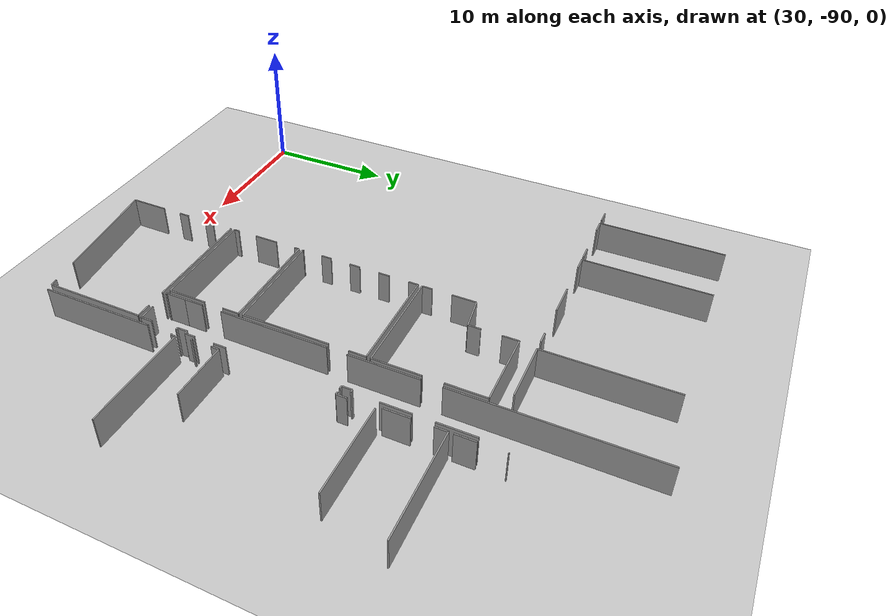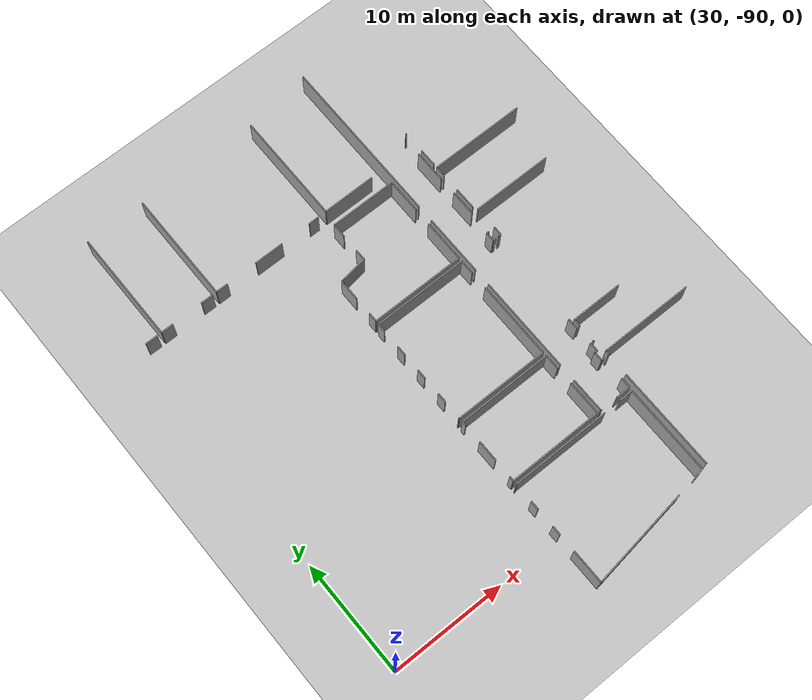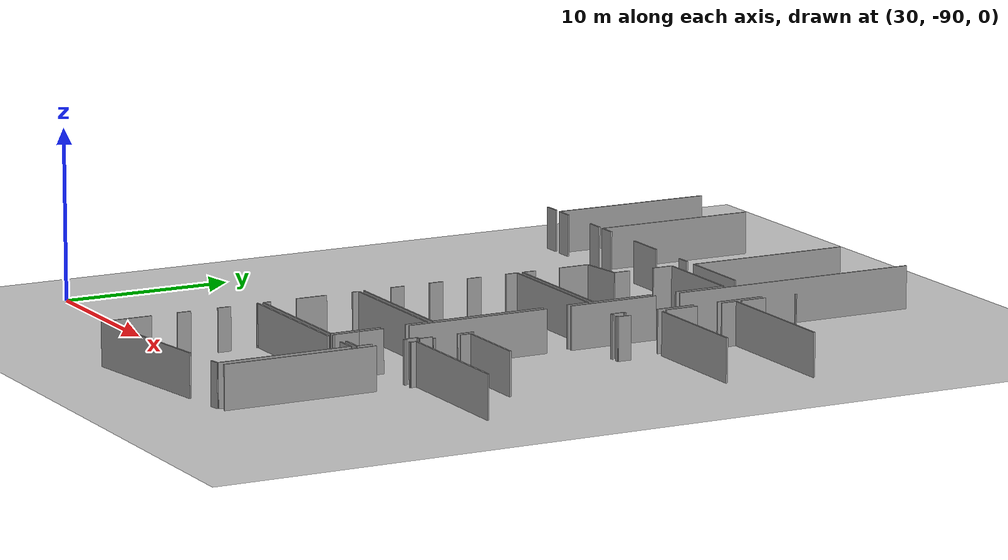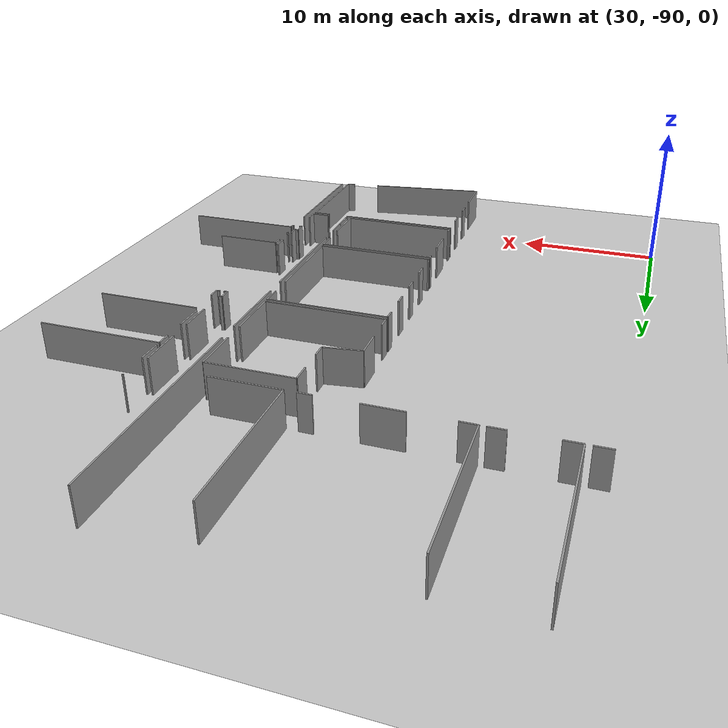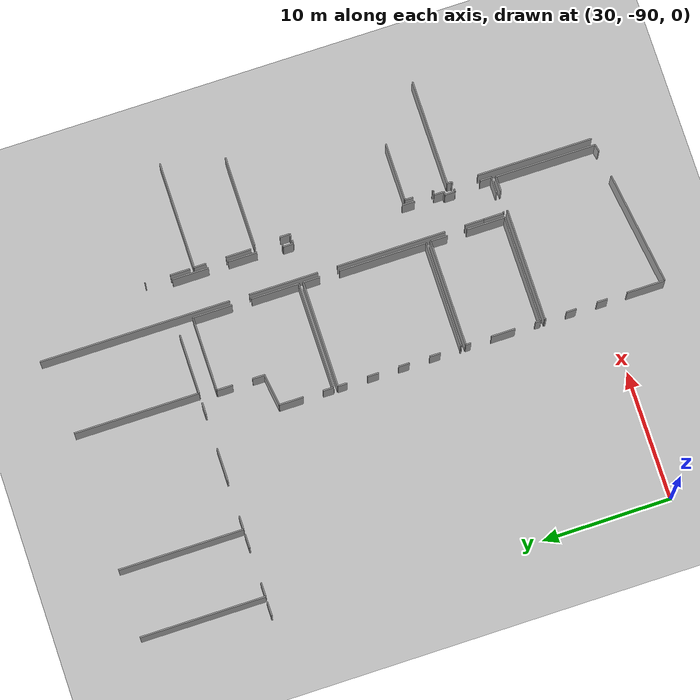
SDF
<sdf version="1.6">
 <world name="default">
  <model name="ground_plane">
   <static>1</static>
   <link name="link">
    <collision name="collision">
     <geometry><plane><normal>0 0 1</normal><size>100 100</size></plane></geometry>
     <surface><friction><ode><mu>100</mu><mu2>50</mu2></ode></friction></surface>
    </collision>
    <visual name="visual">
     <cast_shadows>0</cast_shadows>
     <geometry><plane><normal>0 0 1</normal><size>100 100</size></plane></geometry>
     <material>
      <script><uri>file://media/materials/scripts/gazebo.material</uri><name>Gazebo/Grey</name></script>
     </material>
    </visual>
   </link>
  </model>
  <model name="0510045926_A-40">
   <static>1</static>
   <link name="Wall_1894">
    <collision name="Wall_1894_Collision">
     <geometry><box><size>1.06940469467 0.1 2.5</size></box></geometry>
     <pose>0.534702347334 0 1.25 0 0 0</pose>
    </collision>
    <visual name="Wall_1894_Visual">
     <pose>0.534702347334 0 1.25 0 0 0</pose>
     <geometry><box><size>1.06940469467 0.1 2.5</size></box></geometry>
     <material>
      <script><uri>file://media/materials/scripts/gazebo.material</uri><name>Gazebo/Grey</name></script>
      <ambient>1 1 1 1</ambient>
     </material>
    </visual>
    <pose>165.649619566 -160.406185946 0 0 0 3.14159265359</pose>
   </link>
   <link name="Wall_1896">
    <collision name="Wall_1896_Collision">
     <geometry><box><size>9.62362691407 0.1 2.5</size></box></geometry>
     <pose>4.81181345704 0 1.25 0 0 0</pose>
    </collision>
    <visual name="Wall_1896_Visual">
     <pose>4.81181345704 0 1.25 0 0 0</pose>
     <geometry><box><size>9.62362691407 0.1 2.5</size></box></geometry>
     <material>
      <script><uri>file://media/materials/scripts/gazebo.material</uri><name>Gazebo/Grey</name></script>
      <ambient>1 1 1 1</ambient>
     </material>
    </visual>
    <pose>166.049155048 -160.41430865 0 0 0 1.57079632679</pose>
   </link>
   <link name="Wall_1900">
    <collision name="Wall_1900_Collision">
     <geometry><box><size>1.0668663498 0.1 2.5</size></box></geometry>
     <pose>0.533433174898 0 1.25 0 0 0</pose>
    </collision>
    <visual name="Wall_1900_Visual">
     <pose>0.533433174898 0 1.25 0 0 0</pose>
     <geometry><box><size>1.0668663498 0.1 2.5</size></box></geometry>
     <material>
      <script><uri>file://media/materials/scripts/gazebo.material</uri><name>Gazebo/Grey</name></script>
      <ambient>1 1 1 1</ambient>
     </material>
    </visual>
    <pose>170.886732706 -160.409993464 0 0 0 3.14159265359</pose>
   </link>
   <link name="Wall_1901">
    <collision name="Wall_1901_Collision">
     <geometry><box><size>1.07245938992 0.1 2.5</size></box></geometry>
     <pose>0.53622969496 0 1.25 0 0 0</pose>
    </collision>
    <visual name="Wall_1901_Visual">
     <pose>0.53622969496 0 1.25 0 0 0</pose>
     <geometry><box><size>1.07245938992 0.1 2.5</size></box></geometry>
     <material>
      <script><uri>file://media/materials/scripts/gazebo.material</uri><name>Gazebo/Grey</name></script>
      <ambient>1 1 1 1</ambient>
     </material>
    </visual>
    <pose>167.121605757 -160.409993464 0 0 0 -3.13756900666</pose>
   </link>
   <link name="Wall_1902">
    <collision name="Wall_1902_Collision">
     <geometry><box><size>9.60865067932 0.1 2.5</size></box></geometry>
     <pose>4.80432533966 0 1.25 0 0 0</pose>
    </collision>
    <visual name="Wall_1902_Visual">
     <pose>4.80432533966 0 1.25 0 0 0</pose>
     <geometry><box><size>9.60865067932 0.1 2.5</size></box></geometry>
     <material>
      <script><uri>file://media/materials/scripts/gazebo.material</uri><name>Gazebo/Grey</name></script>
      <ambient>1 1 1 1</ambient>
     </material>
    </visual>
    <pose>171.266215264 -160.406693615 0 0 0 1.57079632679</pose>
   </link>
   <link name="Wall_1907">
    <collision name="Wall_1907_Collision">
     <geometry><box><size>0.892735891562 0.1 2.5</size></box></geometry>
     <pose>0.446367945781 0 1.25 0 0 0</pose>
    </collision>
    <visual name="Wall_1907_Visual">
     <pose>0.446367945781 0 1.25 0 0 0</pose>
     <geometry><box><size>0.892735891562 0.1 2.5</size></box></geometry>
     <material>
      <script><uri>file://media/materials/scripts/gazebo.material</uri><name>Gazebo/Grey</name></script>
      <ambient>1 1 1 1</ambient>
     </material>
    </visual>
    <pose>181.166521769 -160.416339326 0 0 0 3.14159265359</pose>
   </link>
   <link name="Wall_1908">
    <collision name="Wall_1908_Collision">
     <geometry><box><size>2.55433644492 0.1 2.5</size></box></geometry>
     <pose>1.27716822246 0 1.25 0 0 0</pose>
    </collision>
    <visual name="Wall_1908_Visual">
     <pose>1.27716822246 0 1.25 0 0 0</pose>
     <geometry><box><size>2.55433644492 0.1 2.5</size></box></geometry>
     <material>
      <script><uri>file://media/materials/scripts/gazebo.material</uri><name>Gazebo/Grey</name></script>
      <ambient>1 1 1 1</ambient>
     </material>
    </visual>
    <pose>177.611315941 -160.416339326 0 0 0 3.14159265359</pose>
   </link>
   <link name="Wall_1909">
    <collision name="Wall_1909_Collision">
     <geometry><box><size>1.05624934476 0.1 2.5</size></box></geometry>
     <pose>0.528124672378 0 1.25 0 0 0</pose>
    </collision>
    <visual name="Wall_1909_Visual">
     <pose>0.528124672378 0 1.25 0 0 0</pose>
     <geometry><box><size>1.05624934476 0.1 2.5</size></box></geometry>
     <material>
      <script><uri>file://media/materials/scripts/gazebo.material</uri><name>Gazebo/Grey</name></script>
      <ambient>1 1 1 1</ambient>
     </material>
    </visual>
    <pose>172.322420566 -160.416339326 0 0 0 3.13246048737</pose>
   </link>
   <link name="Wall_1982">
    <collision name="Wall_1982_Collision">
     <geometry><box><size>9.62591142446 0.1 2.5</size></box></geometry>
     <pose>4.81295571223 0 1.25 0 0 0</pose>
    </collision>
    <visual name="Wall_1982_Visual">
     <pose>4.81295571223 0 1.25 0 0 0</pose>
     <geometry><box><size>9.62591142446 0.1 2.5</size></box></geometry>
     <material>
      <script><uri>file://media/materials/scripts/gazebo.material</uri><name>Gazebo/Grey</name></script>
      <ambient>1 1 1 1</ambient>
     </material>
    </visual>
    <pose>181.933863424 -160.414054816 0 0 0 1.57079632679</pose>
   </link>
   <link name="Wall_1986">
    <collision name="Wall_1986_Collision">
     <geometry><box><size>4.59973727136 0.1 2.5</size></box></geometry>
     <pose>2.29986863568 0 1.25 0 0 0</pose>
    </collision>
    <visual name="Wall_1986_Visual">
     <pose>2.29986863568 0 1.25 0 0 0</pose>
     <geometry><box><size>4.59973727136 0.1 2.5</size></box></geometry>
     <material>
      <script><uri>file://media/materials/scripts/gazebo.material</uri><name>Gazebo/Grey</name></script>
      <ambient>1 1 1 1</ambient>
     </material>
    </visual>
    <pose>186.533598167 -160.40923196 0 0 0 -3.14054414672</pose>
   </link>
   <link name="Wall_1987">
    <collision name="Wall_1987_Collision">
     <geometry><box><size>0.0758965116795 0.1 2.5</size></box></geometry>
     <pose>0.0379482558398 0 1.25 0 0 0</pose>
    </collision>
    <visual name="Wall_1987_Visual">
     <pose>0.0379482558398 0 1.25 0 0 0</pose>
     <geometry><box><size>0.0758965116795 0.1 2.5</size></box></geometry>
     <material>
      <script><uri>file://media/materials/scripts/gazebo.material</uri><name>Gazebo/Grey</name></script>
      <ambient>1 1 1 1</ambient>
     </material>
    </visual>
    <pose>179.246263874 -179.863360896 0 0 0 1.57079632679</pose>
   </link>
   <link name="Wall_1988">
    <collision name="Wall_1988_Collision">
     <geometry><box><size>0.830038773218 0.1 2.5</size></box></geometry>
     <pose>0.415019386609 0 1.25 0 0 0</pose>
    </collision>
    <visual name="Wall_1988_Visual">
     <pose>0.415019386609 0 1.25 0 0 0</pose>
     <geometry><box><size>0.830038773218 0.1 2.5</size></box></geometry>
     <material>
      <script><uri>file://media/materials/scripts/gazebo.material</uri><name>Gazebo/Grey</name></script>
      <ambient>1 1 1 1</ambient>
     </material>
    </visual>
    <pose>179.246263874 -178.231205143 0 0 0 1.57079632679</pose>
   </link>
   <link name="Wall_1989">
    <collision name="Wall_1989_Collision">
     <geometry><box><size>0.830292607705 0.1 2.5</size></box></geometry>
     <pose>0.415146303853 0 1.25 0 0 0</pose>
    </collision>
    <visual name="Wall_1989_Visual">
     <pose>0.415146303853 0 1.25 0 0 0</pose>
     <geometry><box><size>0.830292607705 0.1 2.5</size></box></geometry>
     <material>
      <script><uri>file://media/materials/scripts/gazebo.material</uri><name>Gazebo/Grey</name></script>
      <ambient>1 1 1 1</ambient>
     </material>
    </visual>
    <pose>179.246263874 -175.821300521 0 0 0 1.57079632679</pose>
   </link>
   <link name="Wall_1990">
    <collision name="Wall_1990_Collision">
     <geometry><box><size>0.862021918608 0.1 2.5</size></box></geometry>
     <pose>0.431010959304 0 1.25 0 0 0</pose>
    </collision>
    <visual name="Wall_1990_Visual">
     <pose>0.431010959304 0 1.25 0 0 0</pose>
     <geometry><box><size>0.862021918608 0.1 2.5</size></box></geometry>
     <material>
      <script><uri>file://media/materials/scripts/gazebo.material</uri><name>Gazebo/Grey</name></script>
      <ambient>1 1 1 1</ambient>
     </material>
    </visual>
    <pose>179.246263874 -173.44591739 0 0 0 1.57079632679</pose>
   </link>
   <link name="Wall_1991">
    <collision name="Wall_1991_Collision">
     <geometry><box><size>0.725712798969 0.1 2.5</size></box></geometry>
     <pose>0.362856399485 0 1.25 0 0 0</pose>
    </collision>
    <visual name="Wall_1991_Visual">
     <pose>0.362856399485 0 1.25 0 0 0</pose>
     <geometry><box><size>0.725712798969 0.1 2.5</size></box></geometry>
     <material>
      <script><uri>file://media/materials/scripts/gazebo.material</uri><name>Gazebo/Grey</name></script>
      <ambient>1 1 1 1</ambient>
     </material>
    </visual>
    <pose>179.246263874 -171.001745112 0 0 0 1.57079632679</pose>
   </link>
   <link name="Wall_1992">
    <collision name="Wall_1992_Collision">
     <geometry><box><size>8.22728339986 0.1 2.5</size></box></geometry>
     <pose>4.11364169993 0 1.25 0 0 0</pose>
    </collision>
    <visual name="Wall_1992_Visual">
     <pose>4.11364169993 0 1.25 0 0 0</pose>
     <geometry><box><size>8.22728339986 0.1 2.5</size></box></geometry>
     <material>
      <script><uri>file://media/materials/scripts/gazebo.material</uri><name>Gazebo/Grey</name></script>
      <ambient>1 1 1 1</ambient>
     </material>
    </visual>
    <pose>179.246263874 -170.276032313 0 0 0 0.0</pose>
   </link>
   <link name="Wall_1993">
    <collision name="Wall_1993_Collision">
     <geometry><box><size>1.29303287791 0.1 2.5</size></box></geometry>
     <pose>0.646516438956 0 1.25 0 0 0</pose>
    </collision>
    <visual name="Wall_1993_Visual">
     <pose>0.646516438956 0 1.25 0 0 0</pose>
     <geometry><box><size>1.29303287791 0.1 2.5</size></box></geometry>
     <material>
      <script><uri>file://media/materials/scripts/gazebo.material</uri><name>Gazebo/Grey</name></script>
      <ambient>1 1 1 1</ambient>
     </material>
    </visual>
    <pose>187.473547274 -170.276032313 0 0 0 -1.57079632679</pose>
   </link>
   <link name="Wall_1994">
    <collision name="Wall_1994_Collision">
     <geometry><box><size>6.77281178807 0.1 2.5</size></box></geometry>
     <pose>3.38640589404 0 1.25 0 0 0</pose>
    </collision>
    <visual name="Wall_1994_Visual">
     <pose>3.38640589404 0 1.25 0 0 0</pose>
     <geometry><box><size>6.77281178807 0.1 2.5</size></box></geometry>
     <material>
      <script><uri>file://media/materials/scripts/gazebo.material</uri><name>Gazebo/Grey</name></script>
      <ambient>1 1 1 1</ambient>
     </material>
    </visual>
    <pose>187.473547274 -173.088518432 0 0 0 -1.57079632679</pose>
   </link>
   <link name="Wall_1995">
    <collision name="Wall_1995_Collision">
     <geometry><box><size>8.22728365047 0.1 2.5</size></box></geometry>
     <pose>4.11364182523 0 1.25 0 0 0</pose>
    </collision>
    <visual name="Wall_1995_Visual">
     <pose>4.11364182523 0 1.25 0 0 0</pose>
     <geometry><box><size>8.22728365047 0.1 2.5</size></box></geometry>
     <material>
      <script><uri>file://media/materials/scripts/gazebo.material</uri><name>Gazebo/Grey</name></script>
      <ambient>1 1 1 1</ambient>
     </material>
    </visual>
    <pose>187.473547274 -179.86133022 0 0 0 -3.14134583143</pose>
   </link>
   <link name="Wall_1996">
    <collision name="Wall_1996_Collision">
     <geometry><box><size>0.412734876224 0.1 2.5</size></box></geometry>
     <pose>0.206367438112 0 1.25 0 0 0</pose>
    </collision>
    <visual name="Wall_1996_Visual">
     <pose>0.206367438112 0 1.25 0 0 0</pose>
     <geometry><box><size>0.412734876224 0.1 2.5</size></box></geometry>
     <material>
      <script><uri>file://media/materials/scripts/gazebo.material</uri><name>Gazebo/Grey</name></script>
      <ambient>1 1 1 1</ambient>
     </material>
    </visual>
    <pose>179.250832894 -186.031031266 0 0 0 1.57079632679</pose>
   </link>
   <link name="Wall_1997">
    <collision name="Wall_1997_Collision">
     <geometry><box><size>1.84969190839 0.1 2.5</size></box></geometry>
     <pose>0.924845954196 0 1.25 0 0 0</pose>
    </collision>
    <visual name="Wall_1997_Visual">
     <pose>0.924845954196 0 1.25 0 0 0</pose>
     <geometry><box><size>1.84969190839 0.1 2.5</size></box></geometry>
     <material>
      <script><uri>file://media/materials/scripts/gazebo.material</uri><name>Gazebo/Grey</name></script>
      <ambient>1 1 1 1</ambient>
     </material>
    </visual>
    <pose>179.250832894 -184.041476555 0 0 0 1.57079632679</pose>
   </link>
   <link name="Wall_1998">
    <collision name="Wall_1998_Collision">
     <geometry><box><size>0.401566158786 0.1 2.5</size></box></geometry>
     <pose>0.200783079393 0 1.25 0 0 0</pose>
    </collision>
    <visual name="Wall_1998_Visual">
     <pose>0.200783079393 0 1.25 0 0 0</pose>
     <geometry><box><size>0.401566158786 0.1 2.5</size></box></geometry>
     <material>
      <script><uri>file://media/materials/scripts/gazebo.material</uri><name>Gazebo/Grey</name></script>
      <ambient>1 1 1 1</ambient>
     </material>
    </visual>
    <pose>179.250832894 -180.604303764 0 0 0 1.57079632679</pose>
   </link>
   <link name="Wall_1999">
    <collision name="Wall_1999_Collision">
     <geometry><box><size>8.24276730358 0.1 2.5</size></box></geometry>
     <pose>4.12138365179 0 1.25 0 0 0</pose>
    </collision>
    <visual name="Wall_1999_Visual">
     <pose>4.12138365179 0 1.25 0 0 0</pose>
     <geometry><box><size>8.24276730358 0.1 2.5</size></box></geometry>
     <material>
      <script><uri>file://media/materials/scripts/gazebo.material</uri><name>Gazebo/Grey</name></script>
      <ambient>1 1 1 1</ambient>
     </material>
    </visual>
    <pose>179.250832894 -180.202737605 0 0 0 0.0</pose>
   </link>
   <link name="Wall_2000">
    <collision name="Wall_2000_Collision">
     <geometry><box><size>1.32120850599 0.1 2.5</size></box></geometry>
     <pose>0.660604252997 0 1.25 0 0 0</pose>
    </collision>
    <visual name="Wall_2000_Visual">
     <pose>0.660604252997 0 1.25 0 0 0</pose>
     <geometry><box><size>1.32120850599 0.1 2.5</size></box></geometry>
     <material>
      <script><uri>file://media/materials/scripts/gazebo.material</uri><name>Gazebo/Grey</name></script>
      <ambient>1 1 1 1</ambient>
     </material>
    </visual>
    <pose>187.493600198 -180.202737605 0 0 0 -1.57079632679</pose>
   </link>
   <link name="Wall_2001">
    <collision name="Wall_2001_Collision">
     <geometry><box><size>2.97773236961 0.1 2.5</size></box></geometry>
     <pose>1.4888661848 0 1.25 0 0 0</pose>
    </collision>
    <visual name="Wall_2001_Visual">
     <pose>1.4888661848 0 1.25 0 0 0</pose>
     <geometry><box><size>2.97773236961 0.1 2.5</size></box></geometry>
     <material>
      <script><uri>file://media/materials/scripts/gazebo.material</uri><name>Gazebo/Grey</name></script>
      <ambient>1 1 1 1</ambient>
     </material>
    </visual>
    <pose>187.493600198 -183.032484469 0 0 0 -1.57079632679</pose>
   </link>
   <link name="Wall_2002">
    <collision name="Wall_2002_Collision">
     <geometry><box><size>8.24279358357 0.1 2.5</size></box></geometry>
     <pose>4.12139679179 0 1.25 0 0 0</pose>
    </collision>
    <visual name="Wall_2002_Visual">
     <pose>4.12139679179 0 1.25 0 0 0</pose>
     <geometry><box><size>8.24279358357 0.1 2.5</size></box></geometry>
     <material>
      <script><uri>file://media/materials/scripts/gazebo.material</uri><name>Gazebo/Grey</name></script>
      <ambient>1 1 1 1</ambient>
     </material>
    </visual>
    <pose>187.493600198 -186.010216838 0 0 0 -3.1390674842</pose>
   </link>
   <link name="Wall_2003">
    <collision name="Wall_2003_Collision">
     <geometry><box><size>4.47713268563 0.1 2.5</size></box></geometry>
     <pose>2.23856634282 0 1.25 0 0 0</pose>
    </collision>
    <visual name="Wall_2003_Visual">
     <pose>2.23856634282 0 1.25 0 0 0</pose>
     <geometry><box><size>4.47713268563 0.1 2.5</size></box></geometry>
     <material>
      <script><uri>file://media/materials/scripts/gazebo.material</uri><name>Gazebo/Grey</name></script>
      <ambient>1 1 1 1</ambient>
     </material>
    </visual>
    <pose>191.063782261 -179.373460335 0 0 0 0.0</pose>
   </link>
   <link name="Wall_2006">
    <collision name="Wall_2006_Collision">
     <geometry><box><size>0.131486264381 0.1 2.5</size></box></geometry>
     <pose>0.0657431321906 0 1.25 0 0 0</pose>
    </collision>
    <visual name="Wall_2006_Visual">
     <pose>0.0657431321906 0 1.25 0 0 0</pose>
     <geometry><box><size>0.131486264381 0.1 2.5</size></box></geometry>
     <material>
      <script><uri>file://media/materials/scripts/gazebo.material</uri><name>Gazebo/Grey</name></script>
      <ambient>1 1 1 1</ambient>
     </material>
    </visual>
    <pose>191.035860467 -181.645786665 0 0 0 1.57079632679</pose>
   </link>
   <link name="Wall_2007">
    <collision name="Wall_2007_Collision">
     <geometry><box><size>0.637736101569 0.1 2.5</size></box></geometry>
     <pose>0.318868050785 0 1.25 0 0 0</pose>
    </collision>
    <visual name="Wall_2007_Visual">
     <pose>0.318868050785 0 1.25 0 0 0</pose>
     <geometry><box><size>0.637736101569 0.1 2.5</size></box></geometry>
     <material>
      <script><uri>file://media/materials/scripts/gazebo.material</uri><name>Gazebo/Grey</name></script>
      <ambient>1 1 1 1</ambient>
     </material>
    </visual>
    <pose>191.035860467 -180.010584898 0 0 0 1.52699964995</pose>
   </link>
   <link name="Wall_2009">
    <collision name="Wall_2009_Collision">
     <geometry><box><size>0.22388201773 0.1 2.5</size></box></geometry>
     <pose>0.111941008865 0 1.25 0 0 0</pose>
    </collision>
    <visual name="Wall_2009_Visual">
     <pose>0.111941008865 0 1.25 0 0 0</pose>
     <geometry><box><size>0.22388201773 0.1 2.5</size></box></geometry>
     <material>
      <script><uri>file://media/materials/scripts/gazebo.material</uri><name>Gazebo/Grey</name></script>
      <ambient>1 1 1 1</ambient>
     </material>
    </visual>
    <pose>191.036368136 -170.472246372 0 0 0 0.0</pose>
   </link>
   <link name="Wall_2010">
    <collision name="Wall_2010_Collision">
     <geometry><box><size>0.775972027439 0.1 2.5</size></box></geometry>
     <pose>0.38798601372 0 1.25 0 0 0</pose>
    </collision>
    <visual name="Wall_2010_Visual">
     <pose>0.38798601372 0 1.25 0 0 0</pose>
     <geometry><box><size>0.775972027439 0.1 2.5</size></box></geometry>
     <material>
      <script><uri>file://media/materials/scripts/gazebo.material</uri><name>Gazebo/Grey</name></script>
      <ambient>1 1 1 1</ambient>
     </material>
    </visual>
    <pose>191.260250154 -170.472246372 0 0 0 1.57079632679</pose>
   </link>
   <link name="Wall_2011">
    <collision name="Wall_2011_Collision">
     <geometry><box><size>6.9987244817 0.1 2.5</size></box></geometry>
     <pose>3.49936224085 0 1.25 0 0 0</pose>
    </collision>
    <visual name="Wall_2011_Visual">
     <pose>3.49936224085 0 1.25 0 0 0</pose>
     <geometry><box><size>6.9987244817 0.1 2.5</size></box></geometry>
     <material>
      <script><uri>file://media/materials/scripts/gazebo.material</uri><name>Gazebo/Grey</name></script>
      <ambient>1 1 1 1</ambient>
     </material>
    </visual>
    <pose>191.260250154 -167.727280227 0 0 0 0.0</pose>
   </link>
   <link name="Wall_2017">
    <collision name="Wall_2017_Collision">
     <geometry><box><size>1.95147953777 0.1 2.5</size></box></geometry>
     <pose>0.975739768884 0 1.25 0 0 0</pose>
    </collision>
    <visual name="Wall_2017_Visual">
     <pose>0.975739768884 0 1.25 0 0 0</pose>
     <geometry><box><size>1.95147953777 0.1 2.5</size></box></geometry>
     <material>
      <script><uri>file://media/materials/scripts/gazebo.material</uri><name>Gazebo/Grey</name></script>
      <ambient>1 1 1 1</ambient>
     </material>
    </visual>
    <pose>191.049821364 -167.378003973 0 0 0 1.57079632679</pose>
   </link>
   <link name="Wall_2018">
    <collision name="Wall_2018_Collision">
     <geometry><box><size>0.932841740543 0.1 2.5</size></box></geometry>
     <pose>0.466420870272 0 1.25 0 0 0</pose>
    </collision>
    <visual name="Wall_2018_Visual">
     <pose>0.466420870272 0 1.25 0 0 0</pose>
     <geometry><box><size>0.932841740543 0.1 2.5</size></box></geometry>
     <material>
      <script><uri>file://media/materials/scripts/gazebo.material</uri><name>Gazebo/Grey</name></script>
      <ambient>1 1 1 1</ambient>
     </material>
    </visual>
    <pose>191.049821364 -163.88701827 0 0 0 1.57079632679</pose>
   </link>
   <link name="Wall_2019">
    <collision name="Wall_2019_Collision">
     <geometry><box><size>8.29810322179 0.1 2.5</size></box></geometry>
     <pose>4.1490516109 0 1.25 0 0 0</pose>
    </collision>
    <visual name="Wall_2019_Visual">
     <pose>4.1490516109 0 1.25 0 0 0</pose>
     <geometry><box><size>8.29810322179 0.1 2.5</size></box></geometry>
     <material>
      <script><uri>file://media/materials/scripts/gazebo.material</uri><name>Gazebo/Grey</name></script>
      <ambient>1 1 1 1</ambient>
     </material>
    </visual>
    <pose>191.049821364 -162.954176529 0 0 0 0.0</pose>
   </link>
   <link name="Wall_2023">
    <collision name="Wall_2023_Collision">
     <geometry><box><size>0.811255021163 0.1 2.5</size></box></geometry>
     <pose>0.405627510582 0 1.25 0 0 0</pose>
    </collision>
    <visual name="Wall_2023_Visual">
     <pose>0.405627510582 0 1.25 0 0 0</pose>
     <geometry><box><size>0.811255021163 0.1 2.5</size></box></geometry>
     <material>
      <script><uri>file://media/materials/scripts/gazebo.material</uri><name>Gazebo/Grey</name></script>
      <ambient>1 1 1 1</ambient>
     </material>
    </visual>
    <pose>179.260478605 -169.947570487 0 0 0 1.57079632679</pose>
   </link>
   <link name="Wall_2024">
    <collision name="Wall_2024_Collision">
     <geometry><box><size>1.85451476365 0.1 2.5</size></box></geometry>
     <pose>0.927257381824 0 1.25 0 0 0</pose>
    </collision>
    <visual name="Wall_2024_Visual">
     <pose>0.927257381824 0 1.25 0 0 0</pose>
     <geometry><box><size>1.85451476365 0.1 2.5</size></box></geometry>
     <material>
      <script><uri>file://media/materials/scripts/gazebo.material</uri><name>Gazebo/Grey</name></script>
      <ambient>1 1 1 1</ambient>
     </material>
    </visual>
    <pose>179.260478605 -167.610008694 0 0 0 1.57079632679</pose>
   </link>
   <link name="Wall_2025">
    <collision name="Wall_2025_Collision">
     <geometry><box><size>2.49236680942 0.1 2.5</size></box></geometry>
     <pose>1.24618340471 0 1.25 0 0 0</pose>
    </collision>
    <visual name="Wall_2025_Visual">
     <pose>1.24618340471 0 1.25 0 0 0</pose>
     <geometry><box><size>2.49236680942 0.1 2.5</size></box></geometry>
     <material>
      <script><uri>file://media/materials/scripts/gazebo.material</uri><name>Gazebo/Grey</name></script>
      <ambient>1 1 1 1</ambient>
     </material>
    </visual>
    <pose>179.260478605 -165.75549393 0 0 0 0.136899184682</pose>
   </link>
   <link name="Wall_2026">
    <collision name="Wall_2026_Collision">
     <geometry><box><size>0.943502789006 0.1 2.5</size></box></geometry>
     <pose>0.471751394503 0 1.25 0 0 0</pose>
    </collision>
    <visual name="Wall_2026_Visual">
     <pose>0.471751394503 0 1.25 0 0 0</pose>
     <geometry><box><size>0.943502789006 0.1 2.5</size></box></geometry>
     <material>
      <script><uri>file://media/materials/scripts/gazebo.material</uri><name>Gazebo/Grey</name></script>
      <ambient>1 1 1 1</ambient>
     </material>
    </visual>
    <pose>181.729526662 -165.415355717 0 0 0 1.57079632679</pose>
   </link>
   <link name="Wall_2027">
    <collision name="Wall_2027_Collision">
     <geometry><box><size>1.22272072495 0.1 2.5</size></box></geometry>
     <pose>0.611360362476 0 1.25 0 0 0</pose>
    </collision>
    <visual name="Wall_2027_Visual">
     <pose>0.611360362476 0 1.25 0 0 0</pose>
     <geometry><box><size>1.22272072495 0.1 2.5</size></box></geometry>
     <material>
      <script><uri>file://media/materials/scripts/gazebo.material</uri><name>Gazebo/Grey</name></script>
      <ambient>1 1 1 1</ambient>
     </material>
    </visual>
    <pose>181.729526662 -162.945038488 0 0 0 1.57079632679</pose>
   </link>
   <link name="Wall_2028">
    <collision name="Wall_2028_Collision">
     <geometry><box><size>5.75036647354 0.1 2.5</size></box></geometry>
     <pose>2.87518323677 0 1.25 0 0 0</pose>
    </collision>
    <visual name="Wall_2028_Visual">
     <pose>2.87518323677 0 1.25 0 0 0</pose>
     <geometry><box><size>5.75036647354 0.1 2.5</size></box></geometry>
     <material>
      <script><uri>file://media/materials/scripts/gazebo.material</uri><name>Gazebo/Grey</name></script>
      <ambient>1 1 1 1</ambient>
     </material>
    </visual>
    <pose>181.729526662 -161.722317763 0 0 0 0.0</pose>
   </link>
   <link name="Wall_2029">
    <collision name="Wall_2029_Collision">
     <geometry><box><size>3.02621475667 0.1 2.5</size></box></geometry>
     <pose>1.51310737833 0 1.25 0 0 0</pose>
    </collision>
    <visual name="Wall_2029_Visual">
     <pose>1.51310737833 0 1.25 0 0 0</pose>
     <geometry><box><size>3.02621475667 0.1 2.5</size></box></geometry>
     <material>
      <script><uri>file://media/materials/scripts/gazebo.material</uri><name>Gazebo/Grey</name></script>
      <ambient>1 1 1 1</ambient>
     </material>
    </visual>
    <pose>187.479893136 -161.722317763 0 0 0 -1.57079632679</pose>
   </link>
   <link name="Wall_2030">
    <collision name="Wall_2030_Collision">
     <geometry><box><size>3.68669209242 0.1 2.5</size></box></geometry>
     <pose>1.84334604621 0 1.25 0 0 0</pose>
    </collision>
    <visual name="Wall_2030_Visual">
     <pose>1.84334604621 0 1.25 0 0 0</pose>
     <geometry><box><size>3.68669209242 0.1 2.5</size></box></geometry>
     <material>
      <script><uri>file://media/materials/scripts/gazebo.material</uri><name>Gazebo/Grey</name></script>
      <ambient>1 1 1 1</ambient>
     </material>
    </visual>
    <pose>187.479893136 -166.256563208 0 0 0 -1.57079632679</pose>
   </link>
   <link name="Wall_2031">
    <collision name="Wall_2031_Collision">
     <geometry><box><size>8.21941566349 0.1 2.5</size></box></geometry>
     <pose>4.10970783174 0 1.25 0 0 0</pose>
    </collision>
    <visual name="Wall_2031_Visual">
     <pose>4.10970783174 0 1.25 0 0 0</pose>
     <geometry><box><size>8.21941566349 0.1 2.5</size></box></geometry>
     <material>
      <script><uri>file://media/materials/scripts/gazebo.material</uri><name>Gazebo/Grey</name></script>
      <ambient>1 1 1 1</ambient>
     </material>
    </visual>
    <pose>187.479893136 -169.9432553 0 0 0 -3.14106765441</pose>
   </link>
   <link name="Wall_2032">
    <collision name="Wall_2032_Collision">
     <geometry><box><size>2.93051915499 0.1 2.5</size></box></geometry>
     <pose>1.46525957749 0 1.25 0 0 0</pose>
    </collision>
    <visual name="Wall_2032_Visual">
     <pose>1.46525957749 0 1.25 0 0 0</pose>
     <geometry><box><size>2.93051915499 0.1 2.5</size></box></geometry>
     <material>
      <script><uri>file://media/materials/scripts/gazebo.material</uri><name>Gazebo/Grey</name></script>
      <ambient>1 1 1 1</ambient>
     </material>
    </visual>
    <pose>179.260478605 -195.714309285 0 0 0 1.57079632679</pose>
   </link>
   <link name="Wall_2033">
    <collision name="Wall_2033_Collision">
     <geometry><box><size>0.811255021163 0.1 2.5</size></box></geometry>
     <pose>0.405627510582 0 1.25 0 0 0</pose>
    </collision>
    <visual name="Wall_2033_Visual">
     <pose>0.405627510582 0 1.25 0 0 0</pose>
     <geometry><box><size>0.811255021163 0.1 2.5</size></box></geometry>
     <material>
      <script><uri>file://media/materials/scripts/gazebo.material</uri><name>Gazebo/Grey</name></script>
      <ambient>1 1 1 1</ambient>
     </material>
    </visual>
    <pose>179.260478605 -191.248345316 0 0 0 1.57079632679</pose>
   </link>
   <link name="Wall_2034">
    <collision name="Wall_2034_Collision">
     <geometry><box><size>0.778510372312 0.1 2.5</size></box></geometry>
     <pose>0.389255186156 0 1.25 0 0 0</pose>
    </collision>
    <visual name="Wall_2034_Visual">
     <pose>0.389255186156 0 1.25 0 0 0</pose>
     <geometry><box><size>0.778510372312 0.1 2.5</size></box></geometry>
     <material>
      <script><uri>file://media/materials/scripts/gazebo.material</uri><name>Gazebo/Grey</name></script>
      <ambient>1 1 1 1</ambient>
     </material>
    </visual>
    <pose>179.260478605 -188.81102657 0 0 0 1.57079632679</pose>
   </link>
   <link name="Wall_2035">
    <collision name="Wall_2035_Collision">
     <geometry><box><size>0.0995031189913 0.1 2.5</size></box></geometry>
     <pose>0.0497515594956 0 1.25 0 0 0</pose>
    </collision>
    <visual name="Wall_2035_Visual">
     <pose>0.0497515594956 0 1.25 0 0 0</pose>
     <geometry><box><size>0.0995031189913 0.1 2.5</size></box></geometry>
     <material>
      <script><uri>file://media/materials/scripts/gazebo.material</uri><name>Gazebo/Grey</name></script>
      <ambient>1 1 1 1</ambient>
     </material>
    </visual>
    <pose>179.260478605 -186.457980874 0 0 0 1.57079632679</pose>
   </link>
   <link name="Wall_2036">
    <collision name="Wall_2036_Collision">
     <geometry><box><size>8.67530126981 0.1 2.5</size></box></geometry>
     <pose>4.3376506349 0 1.25 0 0 0</pose>
    </collision>
    <visual name="Wall_2036_Visual">
     <pose>4.3376506349 0 1.25 0 0 0</pose>
     <geometry><box><size>8.67530126981 0.1 2.5</size></box></geometry>
     <material>
      <script><uri>file://media/materials/scripts/gazebo.material</uri><name>Gazebo/Grey</name></script>
      <ambient>1 1 1 1</ambient>
     </material>
    </visual>
    <pose>179.260478605 -186.358477755 0 0 0 0.0</pose>
   </link>
   <link name="Wall_2037">
    <collision name="Wall_2037_Collision">
     <geometry><box><size>1.17677668276 0.1 2.5</size></box></geometry>
     <pose>0.588388341382 0 1.25 0 0 0</pose>
    </collision>
    <visual name="Wall_2037_Visual">
     <pose>0.588388341382 0 1.25 0 0 0</pose>
     <geometry><box><size>1.17677668276 0.1 2.5</size></box></geometry>
     <material>
      <script><uri>file://media/materials/scripts/gazebo.material</uri><name>Gazebo/Grey</name></script>
      <ambient>1 1 1 1</ambient>
     </material>
    </visual>
    <pose>189.456756122 -186.358477755 0 0 0 0.0</pose>
   </link>
   <link name="Wall_2038">
    <collision name="Wall_2038_Collision">
     <geometry><box><size>7.77596568158 0.1 2.5</size></box></geometry>
     <pose>3.88798284079 0 1.25 0 0 0</pose>
    </collision>
    <visual name="Wall_2038_Visual">
     <pose>3.88798284079 0 1.25 0 0 0</pose>
     <geometry><box><size>7.77596568158 0.1 2.5</size></box></geometry>
     <material>
      <script><uri>file://media/materials/scripts/gazebo.material</uri><name>Gazebo/Grey</name></script>
      <ambient>1 1 1 1</ambient>
     </material>
    </visual>
    <pose>190.633532805 -186.358477755 0 0 0 -1.57079632679</pose>
   </link>
   <link name="Wall_2039">
    <collision name="Wall_2039_Collision">
     <geometry><box><size>0.575979704938 0.1 2.5</size></box></geometry>
     <pose>0.287989852469 0 1.25 0 0 0</pose>
    </collision>
    <visual name="Wall_2039_Visual">
     <pose>0.287989852469 0 1.25 0 0 0</pose>
     <geometry><box><size>0.575979704938 0.1 2.5</size></box></geometry>
     <material>
      <script><uri>file://media/materials/scripts/gazebo.material</uri><name>Gazebo/Grey</name></script>
      <ambient>1 1 1 1</ambient>
     </material>
    </visual>
    <pose>190.633532805 -194.134443436 0 0 0 -2.95093856464</pose>
   </link>
   <link name="Wall_2040">
    <collision name="Wall_2040_Collision">
     <geometry><box><size>8.82650553811 0.1 2.5</size></box></geometry>
     <pose>4.41325276905 0 1.25 0 0 0</pose>
    </collision>
    <visual name="Wall_2040_Visual">
     <pose>4.41325276905 0 1.25 0 0 0</pose>
     <geometry><box><size>8.82650553811 0.1 2.5</size></box></geometry>
     <material>
      <script><uri>file://media/materials/scripts/gazebo.material</uri><name>Gazebo/Grey</name></script>
      <ambient>1 1 1 1</ambient>
     </material>
    </visual>
    <pose>188.004315186 -194.509103139 0 0 0 -3.004620786</pose>
   </link>
   <link name="Wall_2041">
    <collision name="Wall_2041_Collision">
     <geometry><box><size>8.92202839139 0.1 2.5</size></box></geometry>
     <pose>4.46101419569 0 1.25 0 0 0</pose>
    </collision>
    <visual name="Wall_2041_Visual">
     <pose>4.46101419569 0 1.25 0 0 0</pose>
     <geometry><box><size>8.92202839139 0.1 2.5</size></box></geometry>
     <material>
      <script><uri>file://media/materials/scripts/gazebo.material</uri><name>Gazebo/Grey</name></script>
      <ambient>1 1 1 1</ambient>
     </material>
    </visual>
    <pose>191.155416511 -194.027325283 0 0 0 1.57079632679</pose>
   </link>
   <link name="Wall_2042">
    <collision name="Wall_2042_Collision">
     <geometry><box><size>0.108133491557 0.1 2.5</size></box></geometry>
     <pose>0.0540667457784 0 1.25 0 0 0</pose>
    </collision>
    <visual name="Wall_2042_Visual">
     <pose>0.0540667457784 0 1.25 0 0 0</pose>
     <geometry><box><size>0.108133491557 0.1 2.5</size></box></geometry>
     <material>
      <script><uri>file://media/materials/scripts/gazebo.material</uri><name>Gazebo/Grey</name></script>
      <ambient>1 1 1 1</ambient>
     </material>
    </visual>
    <pose>191.155416511 -183.113203835 0 0 0 0.0</pose>
   </link>
   <link name="Wall_2043">
    <collision name="Wall_2043_Collision">
     <geometry><box><size>0.355875951086 0.1 2.5</size></box></geometry>
     <pose>0.177937975543 0 1.25 0 0 0</pose>
    </collision>
    <visual name="Wall_2043_Visual">
     <pose>0.177937975543 0 1.25 0 0 0</pose>
     <geometry><box><size>0.355875951086 0.1 2.5</size></box></geometry>
     <material>
      <script><uri>file://media/materials/scripts/gazebo.material</uri><name>Gazebo/Grey</name></script>
      <ambient>1 1 1 1</ambient>
     </material>
    </visual>
    <pose>191.263550002 -183.113203835 0 0 0 1.57079632679</pose>
   </link>
   <link name="Wall_2044">
    <collision name="Wall_2044_Collision">
     <geometry><box><size>8.18210086113 0.1 2.5</size></box></geometry>
     <pose>4.09105043057 0 1.25 0 0 0</pose>
    </collision>
    <visual name="Wall_2044_Visual">
     <pose>4.09105043057 0 1.25 0 0 0</pose>
     <geometry><box><size>8.18210086113 0.1 2.5</size></box></geometry>
     <material>
      <script><uri>file://media/materials/scripts/gazebo.material</uri><name>Gazebo/Grey</name></script>
      <ambient>1 1 1 1</ambient>
     </material>
    </visual>
    <pose>191.263550002 -182.757327884 0 0 0 0.0</pose>
   </link>
   <link name="Wall_2051">
    <collision name="Wall_2051_Collision">
     <geometry><box><size>1.53696782013 0.1 2.5</size></box></geometry>
     <pose>0.768483910066 0 1.25 0 0 0</pose>
    </collision>
    <visual name="Wall_2051_Visual">
     <pose>0.768483910066 0 1.25 0 0 0</pose>
     <geometry><box><size>1.53696782013 0.1 2.5</size></box></geometry>
     <material>
      <script><uri>file://media/materials/scripts/gazebo.material</uri><name>Gazebo/Grey</name></script>
      <ambient>1 1 1 1</ambient>
     </material>
    </visual>
    <pose>191.040683322 -162.63180673 0 0 0 1.57079632679</pose>
   </link>
   <link name="Wall_2052">
    <collision name="Wall_2052_Collision">
     <geometry><box><size>0.0682814770629 0.1 2.5</size></box></geometry>
     <pose>0.0341407385314 0 1.25 0 0 0</pose>
    </collision>
    <visual name="Wall_2052_Visual">
     <pose>0.0341407385314 0 1.25 0 0 0</pose>
     <geometry><box><size>0.0682814770629 0.1 2.5</size></box></geometry>
     <material>
      <script><uri>file://media/materials/scripts/gazebo.material</uri><name>Gazebo/Grey</name></script>
      <ambient>1 1 1 1</ambient>
     </material>
    </visual>
    <pose>191.040683322 -159.190826422 0 0 0 1.57079632679</pose>
   </link>
   <link name="Wall_2059">
    <collision name="Wall_2059_Collision">
     <geometry><box><size>1.46487882576 0.1 2.5</size></box></geometry>
     <pose>0.732439412881 0 1.25 0 0 0</pose>
    </collision>
    <visual name="Wall_2059_Visual">
     <pose>0.732439412881 0 1.25 0 0 0</pose>
     <geometry><box><size>1.46487882576 0.1 2.5</size></box></geometry>
     <material>
      <script><uri>file://media/materials/scripts/gazebo.material</uri><name>Gazebo/Grey</name></script>
      <ambient>1 1 1 1</ambient>
     </material>
    </visual>
    <pose>187.821300521 -184.465887818 0 0 0 1.57079632679</pose>
   </link>
   <link name="Wall_2060">
    <collision name="Wall_2060_Collision">
     <geometry><box><size>8.40445987194 0.1 2.5</size></box></geometry>
     <pose>4.20222993597 0 1.25 0 0 0</pose>
    </collision>
    <visual name="Wall_2060_Visual">
     <pose>4.20222993597 0 1.25 0 0 0</pose>
     <geometry><box><size>8.40445987194 0.1 2.5</size></box></geometry>
     <material>
      <script><uri>file://media/materials/scripts/gazebo.material</uri><name>Gazebo/Grey</name></script>
      <ambient>1 1 1 1</ambient>
     </material>
    </visual>
    <pose>187.821300521 -181.448049599 0 0 0 1.57079632679</pose>
   </link>
   <link name="Wall_2061">
    <collision name="Wall_2061_Collision">
     <geometry><box><size>5.32570137642 0.1 2.5</size></box></geometry>
     <pose>2.66285068821 0 1.25 0 0 0</pose>
    </collision>
    <visual name="Wall_2061_Visual">
     <pose>2.66285068821 0 1.25 0 0 0</pose>
     <geometry><box><size>5.32570137642 0.1 2.5</size></box></geometry>
     <material>
      <script><uri>file://media/materials/scripts/gazebo.material</uri><name>Gazebo/Grey</name></script>
      <ambient>1 1 1 1</ambient>
     </material>
    </visual>
    <pose>187.821300521 -171.520582804 0 0 0 1.57079632679</pose>
   </link>
   <link name="Wall_2062">
    <collision name="Wall_2062_Collision">
     <geometry><box><size>14.6863557617 0.1 2.5</size></box></geometry>
     <pose>7.34317788086 0 1.25 0 0 0</pose>
    </collision>
    <visual name="Wall_2062_Visual">
     <pose>7.34317788086 0 1.25 0 0 0</pose>
     <geometry><box><size>14.6863557617 0.1 2.5</size></box></geometry>
     <material>
      <script><uri>file://media/materials/scripts/gazebo.material</uri><name>Gazebo/Grey</name></script>
      <ambient>1 1 1 1</ambient>
     </material>
    </visual>
    <pose>187.821300521 -164.683550891 0 0 0 1.57079632679</pose>
   </link>
   <link name="Wall_2064">
    <collision name="Wall_2064_Collision">
     <geometry><box><size>2.81857814612 0.1 2.5</size></box></geometry>
     <pose>1.40928907306 0 1.25 0 0 0</pose>
    </collision>
    <visual name="Wall_2064_Visual">
     <pose>1.40928907306 0 1.25 0 0 0</pose>
     <geometry><box><size>2.81857814612 0.1 2.5</size></box></geometry>
     <material>
      <script><uri>file://media/materials/scripts/gazebo.material</uri><name>Gazebo/Grey</name></script>
      <ambient>1 1 1 1</ambient>
     </material>
    </visual>
    <pose>190.695976089 -161.137990773 0 0 0 -1.57079632679</pose>
   </link>
   <link name="Wall_2065">
    <collision name="Wall_2065_Collision">
     <geometry><box><size>2.24846588782 0.1 2.5</size></box></geometry>
     <pose>1.12423294391 0 1.25 0 0 0</pose>
    </collision>
    <visual name="Wall_2065_Visual">
     <pose>1.12423294391 0 1.25 0 0 0</pose>
     <geometry><box><size>2.24846588782 0.1 2.5</size></box></geometry>
     <material>
      <script><uri>file://media/materials/scripts/gazebo.material</uri><name>Gazebo/Grey</name></script>
      <ambient>1 1 1 1</ambient>
     </material>
    </visual>
    <pose>190.695976089 -165.480083512 0 0 0 -1.57079632679</pose>
   </link>
   <link name="Wall_2066">
    <collision name="Wall_2066_Collision">
     <geometry><box><size>0.206113603625 0.1 2.5</size></box></geometry>
     <pose>0.103056801812 0 1.25 0 0 0</pose>
    </collision>
    <visual name="Wall_2066_Visual">
     <pose>0.103056801812 0 1.25 0 0 0</pose>
     <geometry><box><size>0.206113603625 0.1 2.5</size></box></geometry>
     <material>
      <script><uri>file://media/materials/scripts/gazebo.material</uri><name>Gazebo/Grey</name></script>
      <ambient>1 1 1 1</ambient>
     </material>
    </visual>
    <pose>190.695976089 -169.712519751 0 0 0 3.14159265359</pose>
   </link>
   <link name="Wall_2067">
    <collision name="Wall_2067_Collision">
     <geometry><box><size>0.776733530901 0.1 2.5</size></box></geometry>
     <pose>0.388366765451 0 1.25 0 0 0</pose>
    </collision>
    <visual name="Wall_2067_Visual">
     <pose>0.388366765451 0 1.25 0 0 0</pose>
     <geometry><box><size>0.776733530901 0.1 2.5</size></box></geometry>
     <material>
      <script><uri>file://media/materials/scripts/gazebo.material</uri><name>Gazebo/Grey</name></script>
      <ambient>1 1 1 1</ambient>
     </material>
    </visual>
    <pose>190.489862485 -169.712519751 0 0 0 -1.57079632679</pose>
   </link>
   <link name="Wall_2068">
    <collision name="Wall_2068_Collision">
     <geometry><box><size>0.246473287093 0.1 2.5</size></box></geometry>
     <pose>0.123236643547 0 1.25 0 0 0</pose>
    </collision>
    <visual name="Wall_2068_Visual">
     <pose>0.123236643547 0 1.25 0 0 0</pose>
     <geometry><box><size>0.246473287093 0.1 2.5</size></box></geometry>
     <material>
      <script><uri>file://media/materials/scripts/gazebo.material</uri><name>Gazebo/Grey</name></script>
      <ambient>1 1 1 1</ambient>
     </material>
    </visual>
    <pose>190.489862485 -170.489253282 0 0 0 0.0</pose>
   </link>
   <link name="Wall_2069">
    <collision name="Wall_2069_Collision">
     <geometry><box><size>0.970155410165 0.1 2.5</size></box></geometry>
     <pose>0.485077705082 0 1.25 0 0 0</pose>
    </collision>
    <visual name="Wall_2069_Visual">
     <pose>0.485077705082 0 1.25 0 0 0</pose>
     <geometry><box><size>0.970155410165 0.1 2.5</size></box></geometry>
     <material>
      <script><uri>file://media/materials/scripts/gazebo.material</uri><name>Gazebo/Grey</name></script>
      <ambient>1 1 1 1</ambient>
     </material>
    </visual>
    <pose>190.736335772 -179.065051433 0 0 0 -1.57079632679</pose>
   </link>
   <link name="Wall_2070">
    <collision name="Wall_2070_Collision">
     <geometry><box><size>0.778510372312 0.1 2.5</size></box></geometry>
     <pose>0.389255186156 0 1.25 0 0 0</pose>
    </collision>
    <visual name="Wall_2070_Visual">
     <pose>0.389255186156 0 1.25 0 0 0</pose>
     <geometry><box><size>0.778510372312 0.1 2.5</size></box></geometry>
     <material>
      <script><uri>file://media/materials/scripts/gazebo.material</uri><name>Gazebo/Grey</name></script>
      <ambient>1 1 1 1</ambient>
     </material>
    </visual>
    <pose>190.736335772 -181.551106401 0 0 0 -1.57079632679</pose>
   </link>
   <link name="Wall_2071">
    <collision name="Wall_2071_Collision">
     <geometry><box><size>0.239365921451 0.1 2.5</size></box></geometry>
     <pose>0.119682960725 0 1.25 0 0 0</pose>
    </collision>
    <visual name="Wall_2071_Visual">
     <pose>0.119682960725 0 1.25 0 0 0</pose>
     <geometry><box><size>0.239365921451 0.1 2.5</size></box></geometry>
     <material>
      <script><uri>file://media/materials/scripts/gazebo.material</uri><name>Gazebo/Grey</name></script>
      <ambient>1 1 1 1</ambient>
     </material>
    </visual>
    <pose>190.736335772 -182.329616773 0 0 0 3.14159265359</pose>
   </link>
   <link name="Wall_2072">
    <collision name="Wall_2072_Collision">
     <geometry><box><size>0.787394579365 0.1 2.5</size></box></geometry>
     <pose>0.393697289682 0 1.25 0 0 0</pose>
    </collision>
    <visual name="Wall_2072_Visual">
     <pose>0.393697289682 0 1.25 0 0 0</pose>
     <geometry><box><size>0.787394579365 0.1 2.5</size></box></geometry>
     <material>
      <script><uri>file://media/materials/scripts/gazebo.material</uri><name>Gazebo/Grey</name></script>
      <ambient>1 1 1 1</ambient>
     </material>
    </visual>
    <pose>190.496969851 -182.329616773 0 0 0 -1.57079632679</pose>
   </link>
   <link name="Wall_2073">
    <collision name="Wall_2073_Collision">
     <geometry><box><size>0.206113603625 0.1 2.5</size></box></geometry>
     <pose>0.103056801812 0 1.25 0 0 0</pose>
    </collision>
    <visual name="Wall_2073_Visual">
     <pose>0.103056801812 0 1.25 0 0 0</pose>
     <geometry><box><size>0.206113603625 0.1 2.5</size></box></geometry>
     <material>
      <script><uri>file://media/materials/scripts/gazebo.material</uri><name>Gazebo/Grey</name></script>
      <ambient>1 1 1 1</ambient>
     </material>
    </visual>
    <pose>190.496969851 -183.117011353 0 0 0 0.0</pose>
   </link>
   <link name="Wall_2074">
    <collision name="Wall_2074_Collision">
     <geometry><box><size>0.882582512073 0.1 2.5</size></box></geometry>
     <pose>0.441291256037 0 1.25 0 0 0</pose>
    </collision>
    <visual name="Wall_2074_Visual">
     <pose>0.441291256037 0 1.25 0 0 0</pose>
     <geometry><box><size>0.882582512073 0.1 2.5</size></box></geometry>
     <material>
      <script><uri>file://media/materials/scripts/gazebo.material</uri><name>Gazebo/Grey</name></script>
      <ambient>1 1 1 1</ambient>
     </material>
    </visual>
    <pose>190.703083454 -185.143625899 0 0 0 -1.57079632679</pose>
   </link>
   <link name="Wall_2075">
    <collision name="Wall_2075_Collision">
     <geometry><box><size>1.26130356701 0.1 2.5</size></box></geometry>
     <pose>0.630651783505 0 1.25 0 0 0</pose>
    </collision>
    <visual name="Wall_2075_Visual">
     <pose>0.630651783505 0 1.25 0 0 0</pose>
     <geometry><box><size>1.26130356701 0.1 2.5</size></box></geometry>
     <material>
      <script><uri>file://media/materials/scripts/gazebo.material</uri><name>Gazebo/Grey</name></script>
      <ambient>1 1 1 1</ambient>
     </material>
    </visual>
    <pose>190.703083454 -186.026208411 0 0 0 3.14159265359</pose>
   </link>
   <link name="Wall_2076">
    <collision name="Wall_2076_Collision">
     <geometry><box><size>0.0949340982213 0.1 2.5</size></box></geometry>
     <pose>0.0474670491106 0 1.25 0 0 0</pose>
    </collision>
    <visual name="Wall_2076_Visual">
     <pose>0.0474670491106 0 1.25 0 0 0</pose>
     <geometry><box><size>0.0949340982213 0.1 2.5</size></box></geometry>
     <material>
      <script><uri>file://media/materials/scripts/gazebo.material</uri><name>Gazebo/Grey</name></script>
      <ambient>1 1 1 1</ambient>
     </material>
    </visual>
    <pose>187.923595819 -186.026208411 0 0 0 3.14159265359</pose>
   </link>
   <link name="Wall_2077">
    <collision name="Wall_2077_Collision">
     <geometry><box><size>1.56033795701 0.1 2.5</size></box></geometry>
     <pose>0.780168978503 0 1.25 0 0 0</pose>
    </collision>
    <visual name="Wall_2077_Visual">
     <pose>0.780168978503 0 1.25 0 0 0</pose>
     <geometry><box><size>1.56033795701 0.1 2.5</size></box></geometry>
     <material>
      <script><uri>file://media/materials/scripts/gazebo.material</uri><name>Gazebo/Grey</name></script>
      <ambient>1 1 1 1</ambient>
     </material>
    </visual>
    <pose>187.828661721 -186.026208411 0 0 0 1.57551404029</pose>
   </link>
   <pose>-133.95 101.113233661 0 0 0 0</pose>
  </model>
 </world>
</sdf>
